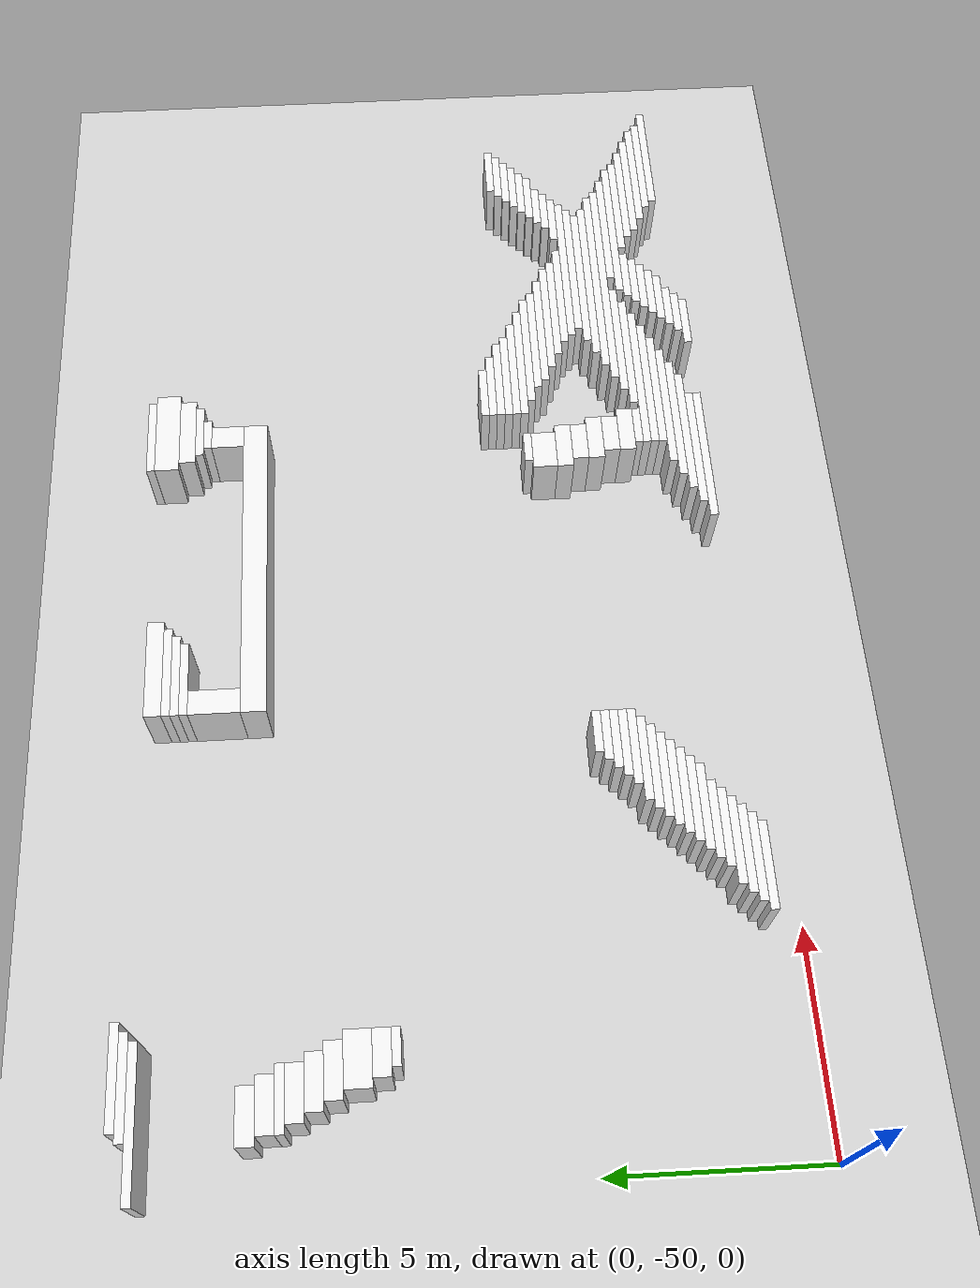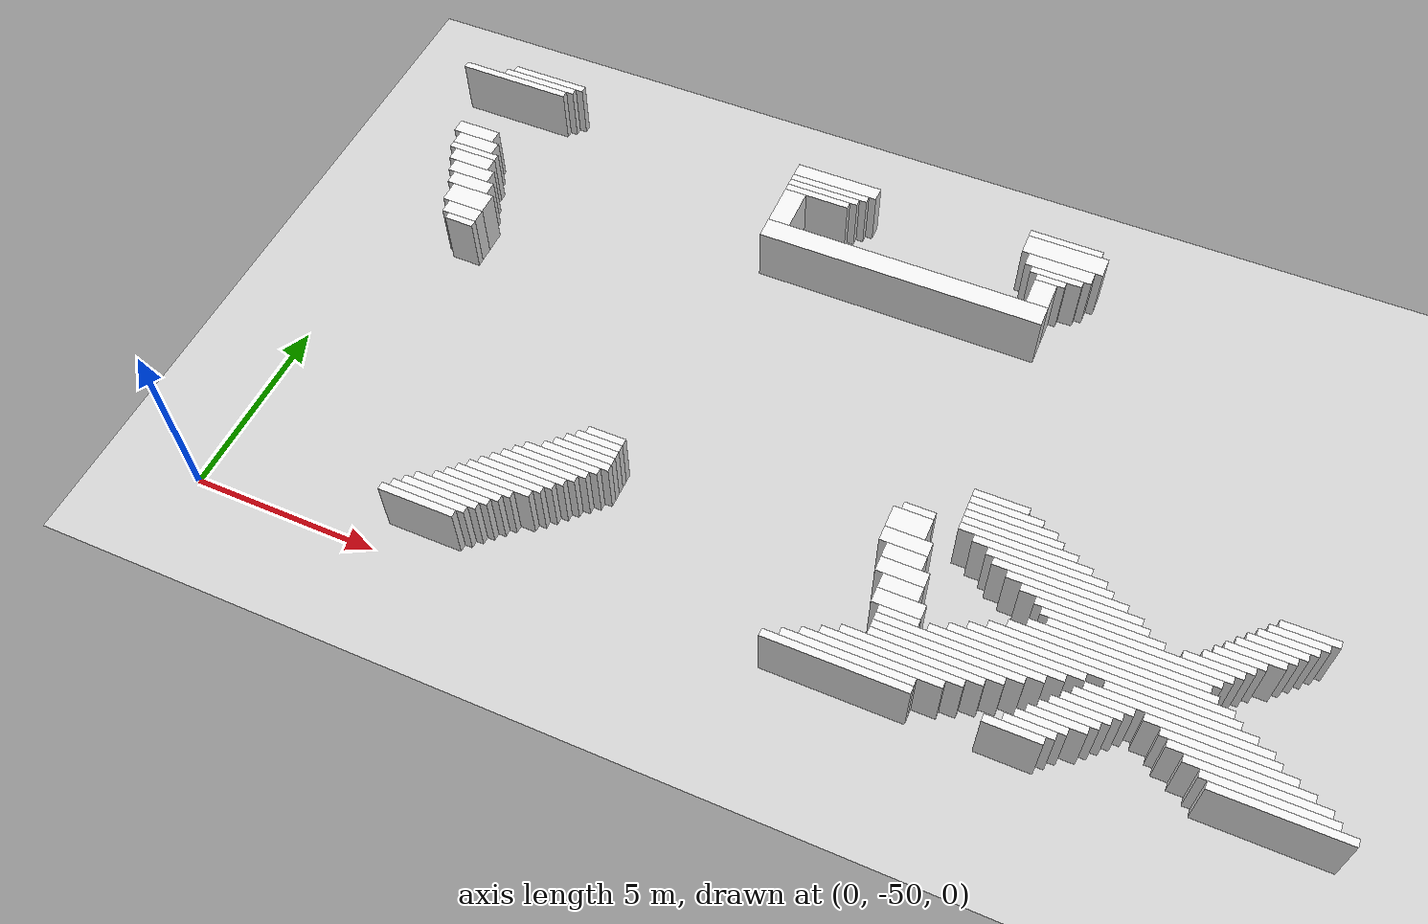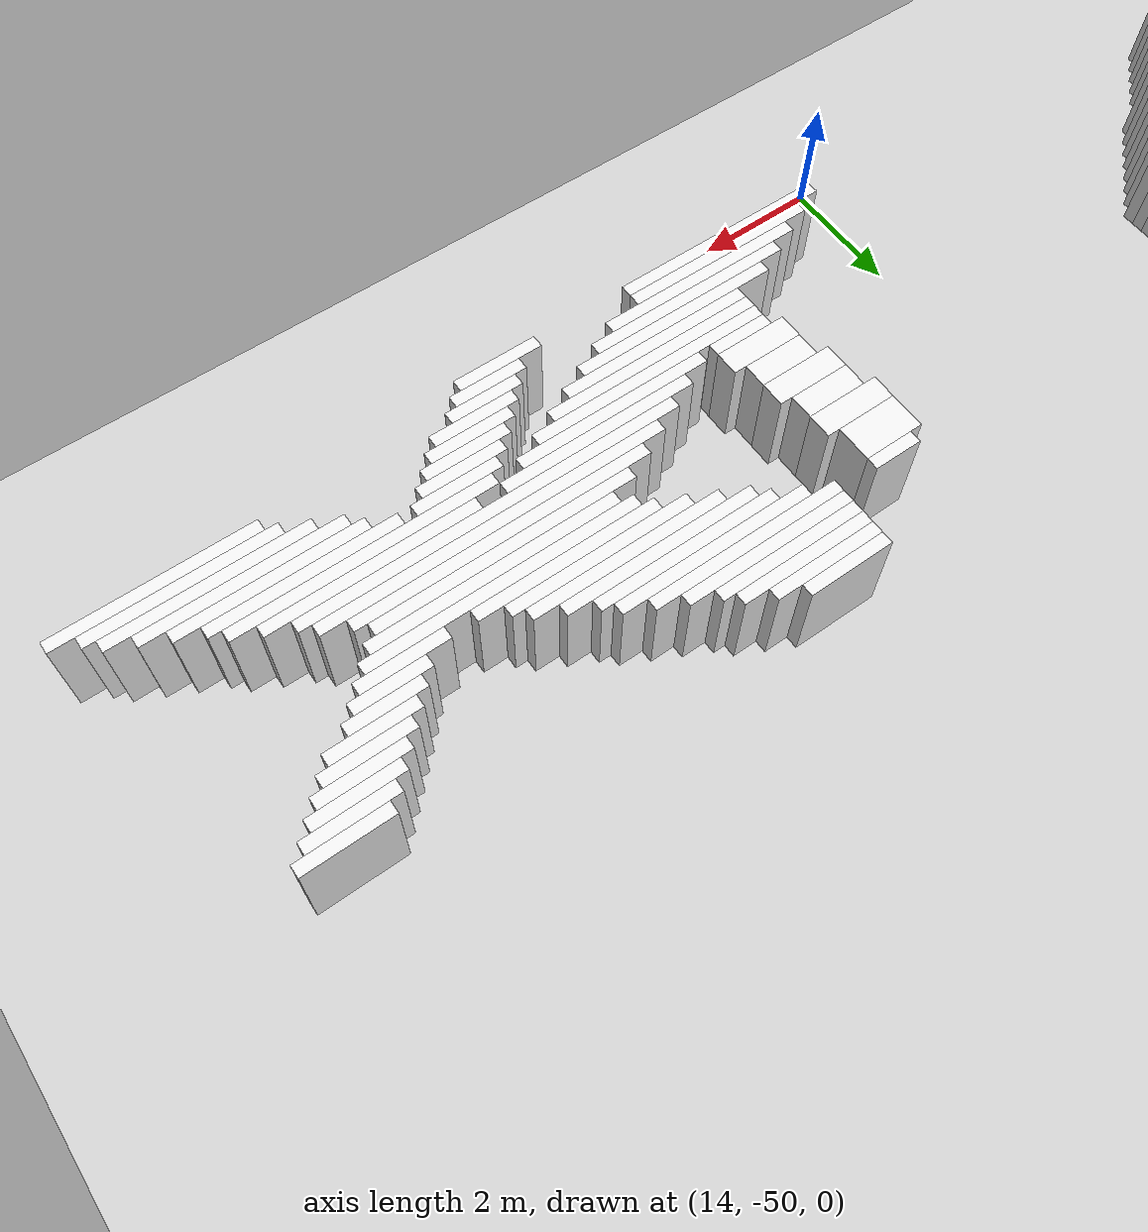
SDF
<sdf version="1.7">
 <world name="default">
  <model name="ground_plane">
   <static>1</static>
   <link name="link">
    <collision name="collision">
     <geometry><plane><normal>0 0 1</normal><size>120 120</size></plane></geometry>
    </collision>
    <visual name="visual">
     <geometry><plane><normal>0 0 1</normal><size>120 120</size></plane></geometry>
     <material>
      <script><uri>file://media/materials/scripts/gazebo.material</uri><name>Gazebo/Grey</name></script>
     </material>
    </visual>
   </link>
  </model>
  <model name="random_complex_03_model">
   <static>1</static>
   <link name="obs_2774">
    <pose>2.3000 -35.1000 0.8000 0 0 0</pose>
    <collision name="obs_2774_col"><geometry><box><size>2.2000 0.2000 1.6000</size></box></geometry></collision>
    <visual name="obs_2774_vis">
     <geometry><box><size>2.2000 0.2000 1.6000</size></box></geometry>
     <material>
      <script><uri>file://media/materials/scripts/gazebo.material</uri><name>Gazebo/White</name></script>
     </material>
    </visual>
   </link>
   <link name="obs_2783">
    <pose>2.1000 -35.3000 0.8000 0 0 0</pose>
    <collision name="obs_2783_col"><geometry><box><size>2.2000 0.2000 1.6000</size></box></geometry></collision>
    <visual name="obs_2783_vis">
     <geometry><box><size>2.2000 0.2000 1.6000</size></box></geometry>
     <material>
      <script><uri>file://media/materials/scripts/gazebo.material</uri><name>Gazebo/White</name></script>
     </material>
    </visual>
   </link>
   <link name="obs_2784">
    <pose>17.8000 -35.3000 0.8000 0 0 0</pose>
    <collision name="obs_2784_col"><geometry><box><size>2.0000 0.2000 1.6000</size></box></geometry></collision>
    <visual name="obs_2784_vis">
     <geometry><box><size>2.0000 0.2000 1.6000</size></box></geometry>
     <material>
      <script><uri>file://media/materials/scripts/gazebo.material</uri><name>Gazebo/White</name></script>
     </material>
    </visual>
   </link>
   <link name="obs_2790">
    <pose>1.4000 -35.5000 0.8000 0 0 0</pose>
    <collision name="obs_2790_col"><geometry><box><size>3.2000 0.2000 1.6000</size></box></geometry></collision>
    <visual name="obs_2790_vis">
     <geometry><box><size>3.2000 0.2000 1.6000</size></box></geometry>
     <material>
      <script><uri>file://media/materials/scripts/gazebo.material</uri><name>Gazebo/White</name></script>
     </material>
    </visual>
   </link>
   <link name="obs_2794">
    <pose>11.4000 -35.6000 0.8000 0 0 0</pose>
    <collision name="obs_2794_col"><geometry><box><size>2.4000 0.4000 1.6000</size></box></geometry></collision>
    <visual name="obs_2794_vis">
     <geometry><box><size>2.4000 0.4000 1.6000</size></box></geometry>
     <material>
      <script><uri>file://media/materials/scripts/gazebo.material</uri><name>Gazebo/White</name></script>
     </material>
    </visual>
   </link>
   <link name="obs_2802">
    <pose>17.9000 -35.7000 0.8000 0 0 0</pose>
    <collision name="obs_2802_col"><geometry><box><size>2.2000 0.6000 1.6000</size></box></geometry></collision>
    <visual name="obs_2802_vis">
     <geometry><box><size>2.2000 0.6000 1.6000</size></box></geometry>
     <material>
      <script><uri>file://media/materials/scripts/gazebo.material</uri><name>Gazebo/White</name></script>
     </material>
    </visual>
   </link>
   <link name="obs_2807">
    <pose>11.3000 -35.9000 0.8000 0 0 0</pose>
    <collision name="obs_2807_col"><geometry><box><size>2.2000 0.2000 1.6000</size></box></geometry></collision>
    <visual name="obs_2807_vis">
     <geometry><box><size>2.2000 0.2000 1.6000</size></box></geometry>
     <material>
      <script><uri>file://media/materials/scripts/gazebo.material</uri><name>Gazebo/White</name></script>
     </material>
    </visual>
   </link>
   <link name="obs_2815">
    <pose>11.2000 -36.1000 0.8000 0 0 0</pose>
    <collision name="obs_2815_col"><geometry><box><size>2.0000 0.2000 1.6000</size></box></geometry></collision>
    <visual name="obs_2815_vis">
     <geometry><box><size>2.0000 0.2000 1.6000</size></box></geometry>
     <material>
      <script><uri>file://media/materials/scripts/gazebo.material</uri><name>Gazebo/White</name></script>
     </material>
    </visual>
   </link>
   <link name="obs_2816">
    <pose>17.9000 -36.2000 0.8000 0 0 0</pose>
    <collision name="obs_2816_col"><geometry><box><size>1.8000 0.4000 1.6000</size></box></geometry></collision>
    <visual name="obs_2816_vis">
     <geometry><box><size>1.8000 0.4000 1.6000</size></box></geometry>
     <material>
      <script><uri>file://media/materials/scripts/gazebo.material</uri><name>Gazebo/White</name></script>
     </material>
    </visual>
   </link>
   <link name="obs_2823">
    <pose>11.1000 -36.3000 0.8000 0 0 0</pose>
    <collision name="obs_2823_col"><geometry><box><size>1.8000 0.2000 1.6000</size></box></geometry></collision>
    <visual name="obs_2823_vis">
     <geometry><box><size>1.8000 0.2000 1.6000</size></box></geometry>
     <material>
      <script><uri>file://media/materials/scripts/gazebo.material</uri><name>Gazebo/White</name></script>
     </material>
    </visual>
   </link>
   <link name="obs_2828">
    <pose>17.9000 -36.5000 0.8000 0 0 0</pose>
    <collision name="obs_2828_col"><geometry><box><size>1.4000 0.2000 1.6000</size></box></geometry></collision>
    <visual name="obs_2828_vis">
     <geometry><box><size>1.4000 0.2000 1.6000</size></box></geometry>
     <material>
      <script><uri>file://media/materials/scripts/gazebo.material</uri><name>Gazebo/White</name></script>
     </material>
    </visual>
   </link>
   <link name="obs_2835">
    <pose>17.8000 -36.7000 0.8000 0 0 0</pose>
    <collision name="obs_2835_col"><geometry><box><size>0.8000 0.2000 1.6000</size></box></geometry></collision>
    <visual name="obs_2835_vis">
     <geometry><box><size>0.8000 0.2000 1.6000</size></box></geometry>
     <material>
      <script><uri>file://media/materials/scripts/gazebo.material</uri><name>Gazebo/White</name></script>
     </material>
    </visual>
   </link>
   <link name="obs_2853">
    <pose>10.5000 -37.0000 0.8000 0 0 0</pose>
    <collision name="obs_2853_col"><geometry><box><size>0.6000 1.2000 1.6000</size></box></geometry></collision>
    <visual name="obs_2853_vis">
     <geometry><box><size>0.6000 1.2000 1.6000</size></box></geometry>
     <material>
      <script><uri>file://media/materials/scripts/gazebo.material</uri><name>Gazebo/White</name></script>
     </material>
    </visual>
   </link>
   <link name="obs_2854">
    <pose>17.7000 -37.2000 0.8000 0 0 0</pose>
    <collision name="obs_2854_col"><geometry><box><size>0.6000 0.8000 1.6000</size></box></geometry></collision>
    <visual name="obs_2854_vis">
     <geometry><box><size>0.6000 0.8000 1.6000</size></box></geometry>
     <material>
      <script><uri>file://media/materials/scripts/gazebo.material</uri><name>Gazebo/White</name></script>
     </material>
    </visual>
   </link>
   <link name="obs_2866">
    <pose>1.4000 -37.8000 0.8000 0 0 0</pose>
    <collision name="obs_2866_col"><geometry><box><size>1.2000 0.4000 1.6000</size></box></geometry></collision>
    <visual name="obs_2866_vis">
     <geometry><box><size>1.2000 0.4000 1.6000</size></box></geometry>
     <material>
      <script><uri>file://media/materials/scripts/gazebo.material</uri><name>Gazebo/White</name></script>
     </material>
    </visual>
   </link>
   <link name="obs_2870">
    <pose>14.1000 -37.9000 0.8000 0 0 0</pose>
    <collision name="obs_2870_col"><geometry><box><size>7.8000 0.6000 1.6000</size></box></geometry></collision>
    <visual name="obs_2870_vis">
     <geometry><box><size>7.8000 0.6000 1.6000</size></box></geometry>
     <material>
      <script><uri>file://media/materials/scripts/gazebo.material</uri><name>Gazebo/White</name></script>
     </material>
    </visual>
   </link>
   <link name="obs_2877">
    <pose>1.6000 -38.2000 0.8000 0 0 0</pose>
    <collision name="obs_2877_col"><geometry><box><size>1.2000 0.4000 1.6000</size></box></geometry></collision>
    <visual name="obs_2877_vis">
     <geometry><box><size>1.2000 0.4000 1.6000</size></box></geometry>
     <material>
      <script><uri>file://media/materials/scripts/gazebo.material</uri><name>Gazebo/White</name></script>
     </material>
    </visual>
   </link>
   <link name="obs_2887">
    <pose>1.7000 -38.5000 0.8000 0 0 0</pose>
    <collision name="obs_2887_col"><geometry><box><size>1.4000 0.2000 1.6000</size></box></geometry></collision>
    <visual name="obs_2887_vis">
     <geometry><box><size>1.4000 0.2000 1.6000</size></box></geometry>
     <material>
      <script><uri>file://media/materials/scripts/gazebo.material</uri><name>Gazebo/White</name></script>
     </material>
    </visual>
   </link>
   <link name="obs_2895">
    <pose>1.8000 -38.8000 0.8000 0 0 0</pose>
    <collision name="obs_2895_col"><geometry><box><size>1.2000 0.4000 1.6000</size></box></geometry></collision>
    <visual name="obs_2895_vis">
     <geometry><box><size>1.2000 0.4000 1.6000</size></box></geometry>
     <material>
      <script><uri>file://media/materials/scripts/gazebo.material</uri><name>Gazebo/White</name></script>
     </material>
    </visual>
   </link>
   <link name="obs_2904">
    <pose>2.0000 -39.2000 0.8000 0 0 0</pose>
    <collision name="obs_2904_col"><geometry><box><size>1.2000 0.4000 1.6000</size></box></geometry></collision>
    <visual name="obs_2904_vis">
     <geometry><box><size>1.2000 0.4000 1.6000</size></box></geometry>
     <material>
      <script><uri>file://media/materials/scripts/gazebo.material</uri><name>Gazebo/White</name></script>
     </material>
    </visual>
   </link>
   <link name="obs_2914">
    <pose>2.2000 -39.6000 0.8000 0 0 0</pose>
    <collision name="obs_2914_col"><geometry><box><size>1.2000 0.4000 1.6000</size></box></geometry></collision>
    <visual name="obs_2914_vis">
     <geometry><box><size>1.2000 0.4000 1.6000</size></box></geometry>
     <material>
      <script><uri>file://media/materials/scripts/gazebo.material</uri><name>Gazebo/White</name></script>
     </material>
    </visual>
   </link>
   <link name="obs_2931">
    <pose>2.4000 -40.1000 0.8000 0 0 0</pose>
    <collision name="obs_2931_col"><geometry><box><size>1.2000 0.6000 1.6000</size></box></geometry></collision>
    <visual name="obs_2931_vis">
     <geometry><box><size>1.2000 0.6000 1.6000</size></box></geometry>
     <material>
      <script><uri>file://media/materials/scripts/gazebo.material</uri><name>Gazebo/White</name></script>
     </material>
    </visual>
   </link>
   <link name="obs_2943">
    <pose>2.5000 -40.6000 0.8000 0 0 0</pose>
    <collision name="obs_2943_col"><geometry><box><size>1.0000 0.4000 1.6000</size></box></geometry></collision>
    <visual name="obs_2943_vis">
     <geometry><box><size>1.0000 0.4000 1.6000</size></box></geometry>
     <material>
      <script><uri>file://media/materials/scripts/gazebo.material</uri><name>Gazebo/White</name></script>
     </material>
    </visual>
   </link>
   <link name="obs_2953">
    <pose>2.6000 -40.9000 0.8000 0 0 0</pose>
    <collision name="obs_2953_col"><geometry><box><size>0.8000 0.2000 1.6000</size></box></geometry></collision>
    <visual name="obs_2953_vis">
     <geometry><box><size>0.8000 0.2000 1.6000</size></box></geometry>
     <material>
      <script><uri>file://media/materials/scripts/gazebo.material</uri><name>Gazebo/White</name></script>
     </material>
    </visual>
   </link>
   <link name="obs_3016">
    <pose>18.7000 -43.7000 0.8000 0 0 0</pose>
    <collision name="obs_3016_col"><geometry><box><size>1.4000 0.2000 1.6000</size></box></geometry></collision>
    <visual name="obs_3016_vis">
     <geometry><box><size>1.4000 0.2000 1.6000</size></box></geometry>
     <material>
      <script><uri>file://media/materials/scripts/gazebo.material</uri><name>Gazebo/White</name></script>
     </material>
    </visual>
   </link>
   <link name="obs_3021">
    <pose>18.9000 -43.9000 0.8000 0 0 0</pose>
    <collision name="obs_3021_col"><geometry><box><size>1.8000 0.2000 1.6000</size></box></geometry></collision>
    <visual name="obs_3021_vis">
     <geometry><box><size>1.8000 0.2000 1.6000</size></box></geometry>
     <material>
      <script><uri>file://media/materials/scripts/gazebo.material</uri><name>Gazebo/White</name></script>
     </material>
    </visual>
   </link>
   <link name="obs_3025">
    <pose>19.1000 -44.1000 0.8000 0 0 0</pose>
    <collision name="obs_3025_col"><geometry><box><size>2.2000 0.2000 1.6000</size></box></geometry></collision>
    <visual name="obs_3025_vis">
     <geometry><box><size>2.2000 0.2000 1.6000</size></box></geometry>
     <material>
      <script><uri>file://media/materials/scripts/gazebo.material</uri><name>Gazebo/White</name></script>
     </material>
    </visual>
   </link>
   <link name="obs_3031">
    <pose>19.2000 -44.3000 0.8000 0 0 0</pose>
    <collision name="obs_3031_col"><geometry><box><size>2.4000 0.2000 1.6000</size></box></geometry></collision>
    <visual name="obs_3031_vis">
     <geometry><box><size>2.4000 0.2000 1.6000</size></box></geometry>
     <material>
      <script><uri>file://media/materials/scripts/gazebo.material</uri><name>Gazebo/White</name></script>
     </material>
    </visual>
   </link>
   <link name="obs_3032">
    <pose>26.1000 -44.3000 0.8000 0 0 0</pose>
    <collision name="obs_3032_col"><geometry><box><size>1.4000 0.2000 1.6000</size></box></geometry></collision>
    <visual name="obs_3032_vis">
     <geometry><box><size>1.4000 0.2000 1.6000</size></box></geometry>
     <material>
      <script><uri>file://media/materials/scripts/gazebo.material</uri><name>Gazebo/White</name></script>
     </material>
    </visual>
   </link>
   <link name="obs_3037">
    <pose>19.4000 -44.5000 0.8000 0 0 0</pose>
    <collision name="obs_3037_col"><geometry><box><size>2.8000 0.2000 1.6000</size></box></geometry></collision>
    <visual name="obs_3037_vis">
     <geometry><box><size>2.8000 0.2000 1.6000</size></box></geometry>
     <material>
      <script><uri>file://media/materials/scripts/gazebo.material</uri><name>Gazebo/White</name></script>
     </material>
    </visual>
   </link>
   <link name="obs_3038">
    <pose>25.9000 -44.5000 0.8000 0 0 0</pose>
    <collision name="obs_3038_col"><geometry><box><size>1.4000 0.2000 1.6000</size></box></geometry></collision>
    <visual name="obs_3038_vis">
     <geometry><box><size>1.4000 0.2000 1.6000</size></box></geometry>
     <material>
      <script><uri>file://media/materials/scripts/gazebo.material</uri><name>Gazebo/White</name></script>
     </material>
    </visual>
   </link>
   <link name="obs_3042">
    <pose>17.0000 -44.7000 0.8000 0 0 0</pose>
    <collision name="obs_3042_col"><geometry><box><size>0.8000 0.2000 1.6000</size></box></geometry></collision>
    <visual name="obs_3042_vis">
     <geometry><box><size>0.8000 0.2000 1.6000</size></box></geometry>
     <material>
      <script><uri>file://media/materials/scripts/gazebo.material</uri><name>Gazebo/White</name></script>
     </material>
    </visual>
   </link>
   <link name="obs_3043">
    <pose>19.6000 -44.7000 0.8000 0 0 0</pose>
    <collision name="obs_3043_col"><geometry><box><size>3.2000 0.2000 1.6000</size></box></geometry></collision>
    <visual name="obs_3043_vis">
     <geometry><box><size>3.2000 0.2000 1.6000</size></box></geometry>
     <material>
      <script><uri>file://media/materials/scripts/gazebo.material</uri><name>Gazebo/White</name></script>
     </material>
    </visual>
   </link>
   <link name="obs_3044">
    <pose>25.7000 -44.7000 0.8000 0 0 0</pose>
    <collision name="obs_3044_col"><geometry><box><size>1.4000 0.2000 1.6000</size></box></geometry></collision>
    <visual name="obs_3044_vis">
     <geometry><box><size>1.4000 0.2000 1.6000</size></box></geometry>
     <material>
      <script><uri>file://media/materials/scripts/gazebo.material</uri><name>Gazebo/White</name></script>
     </material>
    </visual>
   </link>
   <link name="obs_3048">
    <pose>20.0000 -44.9000 0.8000 0 0 0</pose>
    <collision name="obs_3048_col"><geometry><box><size>3.2000 0.2000 1.6000</size></box></geometry></collision>
    <visual name="obs_3048_vis">
     <geometry><box><size>3.2000 0.2000 1.6000</size></box></geometry>
     <material>
      <script><uri>file://media/materials/scripts/gazebo.material</uri><name>Gazebo/White</name></script>
     </material>
    </visual>
   </link>
   <link name="obs_3049">
    <pose>25.5000 -44.9000 0.8000 0 0 0</pose>
    <collision name="obs_3049_col"><geometry><box><size>1.4000 0.2000 1.6000</size></box></geometry></collision>
    <visual name="obs_3049_vis">
     <geometry><box><size>1.4000 0.2000 1.6000</size></box></geometry>
     <material>
      <script><uri>file://media/materials/scripts/gazebo.material</uri><name>Gazebo/White</name></script>
     </material>
    </visual>
   </link>
   <link name="obs_3052">
    <pose>20.3000 -45.1000 0.8000 0 0 0</pose>
    <collision name="obs_3052_col"><geometry><box><size>3.0000 0.2000 1.6000</size></box></geometry></collision>
    <visual name="obs_3052_vis">
     <geometry><box><size>3.0000 0.2000 1.6000</size></box></geometry>
     <material>
      <script><uri>file://media/materials/scripts/gazebo.material</uri><name>Gazebo/White</name></script>
     </material>
    </visual>
   </link>
   <link name="obs_3053">
    <pose>25.3000 -45.1000 0.8000 0 0 0</pose>
    <collision name="obs_3053_col"><geometry><box><size>1.4000 0.2000 1.6000</size></box></geometry></collision>
    <visual name="obs_3053_vis">
     <geometry><box><size>1.4000 0.2000 1.6000</size></box></geometry>
     <material>
      <script><uri>file://media/materials/scripts/gazebo.material</uri><name>Gazebo/White</name></script>
     </material>
    </visual>
   </link>
   <link name="obs_3055">
    <pose>16.9000 -45.1000 0.8000 0 0 0</pose>
    <collision name="obs_3055_col"><geometry><box><size>1.0000 0.6000 1.6000</size></box></geometry></collision>
    <visual name="obs_3055_vis">
     <geometry><box><size>1.0000 0.6000 1.6000</size></box></geometry>
     <material>
      <script><uri>file://media/materials/scripts/gazebo.material</uri><name>Gazebo/White</name></script>
     </material>
    </visual>
   </link>
   <link name="obs_3058">
    <pose>20.6000 -45.3000 0.8000 0 0 0</pose>
    <collision name="obs_3058_col"><geometry><box><size>3.2000 0.2000 1.6000</size></box></geometry></collision>
    <visual name="obs_3058_vis">
     <geometry><box><size>3.2000 0.2000 1.6000</size></box></geometry>
     <material>
      <script><uri>file://media/materials/scripts/gazebo.material</uri><name>Gazebo/White</name></script>
     </material>
    </visual>
   </link>
   <link name="obs_3059">
    <pose>25.1000 -45.3000 0.8000 0 0 0</pose>
    <collision name="obs_3059_col"><geometry><box><size>1.4000 0.2000 1.6000</size></box></geometry></collision>
    <visual name="obs_3059_vis">
     <geometry><box><size>1.4000 0.2000 1.6000</size></box></geometry>
     <material>
      <script><uri>file://media/materials/scripts/gazebo.material</uri><name>Gazebo/White</name></script>
     </material>
    </visual>
   </link>
   <link name="obs_3063">
    <pose>21.0000 -45.5000 0.8000 0 0 0</pose>
    <collision name="obs_3063_col"><geometry><box><size>3.2000 0.2000 1.6000</size></box></geometry></collision>
    <visual name="obs_3063_vis">
     <geometry><box><size>3.2000 0.2000 1.6000</size></box></geometry>
     <material>
      <script><uri>file://media/materials/scripts/gazebo.material</uri><name>Gazebo/White</name></script>
     </material>
    </visual>
   </link>
   <link name="obs_3064">
    <pose>24.8000 -45.5000 0.8000 0 0 0</pose>
    <collision name="obs_3064_col"><geometry><box><size>1.2000 0.2000 1.6000</size></box></geometry></collision>
    <visual name="obs_3064_vis">
     <geometry><box><size>1.2000 0.2000 1.6000</size></box></geometry>
     <material>
      <script><uri>file://media/materials/scripts/gazebo.material</uri><name>Gazebo/White</name></script>
     </material>
    </visual>
   </link>
   <link name="obs_3066">
    <pose>17.0000 -45.6000 0.8000 0 0 0</pose>
    <collision name="obs_3066_col"><geometry><box><size>1.2000 0.4000 1.6000</size></box></geometry></collision>
    <visual name="obs_3066_vis">
     <geometry><box><size>1.2000 0.4000 1.6000</size></box></geometry>
     <material>
      <script><uri>file://media/materials/scripts/gazebo.material</uri><name>Gazebo/White</name></script>
     </material>
    </visual>
   </link>
   <link name="obs_3070">
    <pose>9.3000 -45.7000 0.8000 0 0 0</pose>
    <collision name="obs_3070_col"><geometry><box><size>1.0000 0.2000 1.6000</size></box></geometry></collision>
    <visual name="obs_3070_vis">
     <geometry><box><size>1.0000 0.2000 1.6000</size></box></geometry>
     <material>
      <script><uri>file://media/materials/scripts/gazebo.material</uri><name>Gazebo/White</name></script>
     </material>
    </visual>
   </link>
   <link name="obs_3071">
    <pose>21.3000 -45.7000 0.8000 0 0 0</pose>
    <collision name="obs_3071_col"><geometry><box><size>3.0000 0.2000 1.6000</size></box></geometry></collision>
    <visual name="obs_3071_vis">
     <geometry><box><size>3.0000 0.2000 1.6000</size></box></geometry>
     <material>
      <script><uri>file://media/materials/scripts/gazebo.material</uri><name>Gazebo/White</name></script>
     </material>
    </visual>
   </link>
   <link name="obs_3072">
    <pose>24.6000 -45.7000 0.8000 0 0 0</pose>
    <collision name="obs_3072_col"><geometry><box><size>1.2000 0.2000 1.6000</size></box></geometry></collision>
    <visual name="obs_3072_vis">
     <geometry><box><size>1.2000 0.2000 1.6000</size></box></geometry>
     <material>
      <script><uri>file://media/materials/scripts/gazebo.material</uri><name>Gazebo/White</name></script>
     </material>
    </visual>
   </link>
   <link name="obs_3076">
    <pose>9.2000 -45.9000 0.8000 0 0 0</pose>
    <collision name="obs_3076_col"><geometry><box><size>1.2000 0.2000 1.6000</size></box></geometry></collision>
    <visual name="obs_3076_vis">
     <geometry><box><size>1.2000 0.2000 1.6000</size></box></geometry>
     <material>
      <script><uri>file://media/materials/scripts/gazebo.material</uri><name>Gazebo/White</name></script>
     </material>
    </visual>
   </link>
   <link name="obs_3077">
    <pose>21.7000 -45.9000 0.8000 0 0 0</pose>
    <collision name="obs_3077_col"><geometry><box><size>3.0000 0.2000 1.6000</size></box></geometry></collision>
    <visual name="obs_3077_vis">
     <geometry><box><size>3.0000 0.2000 1.6000</size></box></geometry>
     <material>
      <script><uri>file://media/materials/scripts/gazebo.material</uri><name>Gazebo/White</name></script>
     </material>
    </visual>
   </link>
   <link name="obs_3078">
    <pose>24.3000 -45.9000 0.8000 0 0 0</pose>
    <collision name="obs_3078_col"><geometry><box><size>1.4000 0.2000 1.6000</size></box></geometry></collision>
    <visual name="obs_3078_vis">
     <geometry><box><size>1.4000 0.2000 1.6000</size></box></geometry>
     <material>
      <script><uri>file://media/materials/scripts/gazebo.material</uri><name>Gazebo/White</name></script>
     </material>
    </visual>
   </link>
   <link name="obs_3082">
    <pose>17.1000 -46.0000 0.8000 0 0 0</pose>
    <collision name="obs_3082_col"><geometry><box><size>1.0000 0.4000 1.6000</size></box></geometry></collision>
    <visual name="obs_3082_vis">
     <geometry><box><size>1.0000 0.4000 1.6000</size></box></geometry>
     <material>
      <script><uri>file://media/materials/scripts/gazebo.material</uri><name>Gazebo/White</name></script>
     </material>
    </visual>
   </link>
   <link name="obs_3084">
    <pose>9.1000 -46.1000 0.8000 0 0 0</pose>
    <collision name="obs_3084_col"><geometry><box><size>1.4000 0.2000 1.6000</size></box></geometry></collision>
    <visual name="obs_3084_vis">
     <geometry><box><size>1.4000 0.2000 1.6000</size></box></geometry>
     <material>
      <script><uri>file://media/materials/scripts/gazebo.material</uri><name>Gazebo/White</name></script>
     </material>
    </visual>
   </link>
   <link name="obs_3085">
    <pose>22.6000 -46.1000 0.8000 0 0 0</pose>
    <collision name="obs_3085_col"><geometry><box><size>4.4000 0.2000 1.6000</size></box></geometry></collision>
    <visual name="obs_3085_vis">
     <geometry><box><size>4.4000 0.2000 1.6000</size></box></geometry>
     <material>
      <script><uri>file://media/materials/scripts/gazebo.material</uri><name>Gazebo/White</name></script>
     </material>
    </visual>
   </link>
   <link name="obs_3090">
    <pose>9.0000 -46.3000 0.8000 0 0 0</pose>
    <collision name="obs_3090_col"><geometry><box><size>1.6000 0.2000 1.6000</size></box></geometry></collision>
    <visual name="obs_3090_vis">
     <geometry><box><size>1.6000 0.2000 1.6000</size></box></geometry>
     <material>
      <script><uri>file://media/materials/scripts/gazebo.material</uri><name>Gazebo/White</name></script>
     </material>
    </visual>
   </link>
   <link name="obs_3091">
    <pose>22.6000 -46.3000 0.8000 0 0 0</pose>
    <collision name="obs_3091_col"><geometry><box><size>4.0000 0.2000 1.6000</size></box></geometry></collision>
    <visual name="obs_3091_vis">
     <geometry><box><size>4.0000 0.2000 1.6000</size></box></geometry>
     <material>
      <script><uri>file://media/materials/scripts/gazebo.material</uri><name>Gazebo/White</name></script>
     </material>
    </visual>
   </link>
   <link name="obs_3093">
    <pose>17.2000 -46.4000 0.8000 0 0 0</pose>
    <collision name="obs_3093_col"><geometry><box><size>1.2000 0.4000 1.6000</size></box></geometry></collision>
    <visual name="obs_3093_vis">
     <geometry><box><size>1.2000 0.4000 1.6000</size></box></geometry>
     <material>
      <script><uri>file://media/materials/scripts/gazebo.material</uri><name>Gazebo/White</name></script>
     </material>
    </visual>
   </link>
   <link name="obs_3097">
    <pose>8.9000 -46.5000 0.8000 0 0 0</pose>
    <collision name="obs_3097_col"><geometry><box><size>1.8000 0.2000 1.6000</size></box></geometry></collision>
    <visual name="obs_3097_vis">
     <geometry><box><size>1.8000 0.2000 1.6000</size></box></geometry>
     <material>
      <script><uri>file://media/materials/scripts/gazebo.material</uri><name>Gazebo/White</name></script>
     </material>
    </visual>
   </link>
   <link name="obs_3098">
    <pose>22.3000 -46.5000 0.8000 0 0 0</pose>
    <collision name="obs_3098_col"><geometry><box><size>4.2000 0.2000 1.6000</size></box></geometry></collision>
    <visual name="obs_3098_vis">
     <geometry><box><size>4.2000 0.2000 1.6000</size></box></geometry>
     <material>
      <script><uri>file://media/materials/scripts/gazebo.material</uri><name>Gazebo/White</name></script>
     </material>
    </visual>
   </link>
   <link name="obs_3103">
    <pose>8.6000 -46.7000 0.8000 0 0 0</pose>
    <collision name="obs_3103_col"><geometry><box><size>2.0000 0.2000 1.6000</size></box></geometry></collision>
    <visual name="obs_3103_vis">
     <geometry><box><size>2.0000 0.2000 1.6000</size></box></geometry>
     <material>
      <script><uri>file://media/materials/scripts/gazebo.material</uri><name>Gazebo/White</name></script>
     </material>
    </visual>
   </link>
   <link name="obs_3104">
    <pose>22.2000 -46.7000 0.8000 0 0 0</pose>
    <collision name="obs_3104_col"><geometry><box><size>4.8000 0.2000 1.6000</size></box></geometry></collision>
    <visual name="obs_3104_vis">
     <geometry><box><size>4.8000 0.2000 1.6000</size></box></geometry>
     <material>
      <script><uri>file://media/materials/scripts/gazebo.material</uri><name>Gazebo/White</name></script>
     </material>
    </visual>
   </link>
   <link name="obs_3107">
    <pose>17.3000 -46.8000 0.8000 0 0 0</pose>
    <collision name="obs_3107_col"><geometry><box><size>1.0000 0.4000 1.6000</size></box></geometry></collision>
    <visual name="obs_3107_vis">
     <geometry><box><size>1.0000 0.4000 1.6000</size></box></geometry>
     <material>
      <script><uri>file://media/materials/scripts/gazebo.material</uri><name>Gazebo/White</name></script>
     </material>
    </visual>
   </link>
   <link name="obs_3111">
    <pose>8.4000 -46.9000 0.8000 0 0 0</pose>
    <collision name="obs_3111_col"><geometry><box><size>2.0000 0.2000 1.6000</size></box></geometry></collision>
    <visual name="obs_3111_vis">
     <geometry><box><size>2.0000 0.2000 1.6000</size></box></geometry>
     <material>
      <script><uri>file://media/materials/scripts/gazebo.material</uri><name>Gazebo/White</name></script>
     </material>
    </visual>
   </link>
   <link name="obs_3112">
    <pose>22.2000 -46.9000 0.8000 0 0 0</pose>
    <collision name="obs_3112_col"><geometry><box><size>5.6000 0.2000 1.6000</size></box></geometry></collision>
    <visual name="obs_3112_vis">
     <geometry><box><size>5.6000 0.2000 1.6000</size></box></geometry>
     <material>
      <script><uri>file://media/materials/scripts/gazebo.material</uri><name>Gazebo/White</name></script>
     </material>
    </visual>
   </link>
   <link name="obs_3118">
    <pose>8.2000 -47.1000 0.8000 0 0 0</pose>
    <collision name="obs_3118_col"><geometry><box><size>2.0000 0.2000 1.6000</size></box></geometry></collision>
    <visual name="obs_3118_vis">
     <geometry><box><size>2.0000 0.2000 1.6000</size></box></geometry>
     <material>
      <script><uri>file://media/materials/scripts/gazebo.material</uri><name>Gazebo/White</name></script>
     </material>
    </visual>
   </link>
   <link name="obs_3119">
    <pose>22.1000 -47.1000 0.8000 0 0 0</pose>
    <collision name="obs_3119_col"><geometry><box><size>6.2000 0.2000 1.6000</size></box></geometry></collision>
    <visual name="obs_3119_vis">
     <geometry><box><size>6.2000 0.2000 1.6000</size></box></geometry>
     <material>
      <script><uri>file://media/materials/scripts/gazebo.material</uri><name>Gazebo/White</name></script>
     </material>
    </visual>
   </link>
   <link name="obs_3122">
    <pose>17.4000 -47.2000 0.8000 0 0 0</pose>
    <collision name="obs_3122_col"><geometry><box><size>1.2000 0.4000 1.6000</size></box></geometry></collision>
    <visual name="obs_3122_vis">
     <geometry><box><size>1.2000 0.4000 1.6000</size></box></geometry>
     <material>
      <script><uri>file://media/materials/scripts/gazebo.material</uri><name>Gazebo/White</name></script>
     </material>
    </visual>
   </link>
   <link name="obs_3126">
    <pose>8.0000 -47.3000 0.8000 0 0 0</pose>
    <collision name="obs_3126_col"><geometry><box><size>2.0000 0.2000 1.6000</size></box></geometry></collision>
    <visual name="obs_3126_vis">
     <geometry><box><size>2.0000 0.2000 1.6000</size></box></geometry>
     <material>
      <script><uri>file://media/materials/scripts/gazebo.material</uri><name>Gazebo/White</name></script>
     </material>
    </visual>
   </link>
   <link name="obs_3127">
    <pose>20.2000 -47.3000 0.8000 0 0 0</pose>
    <collision name="obs_3127_col"><geometry><box><size>3.2000 0.2000 1.6000</size></box></geometry></collision>
    <visual name="obs_3127_vis">
     <geometry><box><size>3.2000 0.2000 1.6000</size></box></geometry>
     <material>
      <script><uri>file://media/materials/scripts/gazebo.material</uri><name>Gazebo/White</name></script>
     </material>
    </visual>
   </link>
   <link name="obs_3128">
    <pose>23.9000 -47.3000 0.8000 0 0 0</pose>
    <collision name="obs_3128_col"><geometry><box><size>3.4000 0.2000 1.6000</size></box></geometry></collision>
    <visual name="obs_3128_vis">
     <geometry><box><size>3.4000 0.2000 1.6000</size></box></geometry>
     <material>
      <script><uri>file://media/materials/scripts/gazebo.material</uri><name>Gazebo/White</name></script>
     </material>
    </visual>
   </link>
   <link name="obs_3133">
    <pose>7.8000 -47.5000 0.8000 0 0 0</pose>
    <collision name="obs_3133_col"><geometry><box><size>2.0000 0.2000 1.6000</size></box></geometry></collision>
    <visual name="obs_3133_vis">
     <geometry><box><size>2.0000 0.2000 1.6000</size></box></geometry>
     <material>
      <script><uri>file://media/materials/scripts/gazebo.material</uri><name>Gazebo/White</name></script>
     </material>
    </visual>
   </link>
   <link name="obs_3134">
    <pose>17.5000 -47.5000 0.8000 0 0 0</pose>
    <collision name="obs_3134_col"><geometry><box><size>1.0000 0.2000 1.6000</size></box></geometry></collision>
    <visual name="obs_3134_vis">
     <geometry><box><size>1.0000 0.2000 1.6000</size></box></geometry>
     <material>
      <script><uri>file://media/materials/scripts/gazebo.material</uri><name>Gazebo/White</name></script>
     </material>
    </visual>
   </link>
   <link name="obs_3135">
    <pose>19.8000 -47.5000 0.8000 0 0 0</pose>
    <collision name="obs_3135_col"><geometry><box><size>3.2000 0.2000 1.6000</size></box></geometry></collision>
    <visual name="obs_3135_vis">
     <geometry><box><size>3.2000 0.2000 1.6000</size></box></geometry>
     <material>
      <script><uri>file://media/materials/scripts/gazebo.material</uri><name>Gazebo/White</name></script>
     </material>
    </visual>
   </link>
   <link name="obs_3136">
    <pose>23.9000 -47.5000 0.8000 0 0 0</pose>
    <collision name="obs_3136_col"><geometry><box><size>4.2000 0.2000 1.6000</size></box></geometry></collision>
    <visual name="obs_3136_vis">
     <geometry><box><size>4.2000 0.2000 1.6000</size></box></geometry>
     <material>
      <script><uri>file://media/materials/scripts/gazebo.material</uri><name>Gazebo/White</name></script>
     </material>
    </visual>
   </link>
   <link name="obs_3140">
    <pose>7.6000 -47.7000 0.8000 0 0 0</pose>
    <collision name="obs_3140_col"><geometry><box><size>2.0000 0.2000 1.6000</size></box></geometry></collision>
    <visual name="obs_3140_vis">
     <geometry><box><size>2.0000 0.2000 1.6000</size></box></geometry>
     <material>
      <script><uri>file://media/materials/scripts/gazebo.material</uri><name>Gazebo/White</name></script>
     </material>
    </visual>
   </link>
   <link name="obs_3141">
    <pose>19.0000 -47.7000 0.8000 0 0 0</pose>
    <collision name="obs_3141_col"><geometry><box><size>4.0000 0.2000 1.6000</size></box></geometry></collision>
    <visual name="obs_3141_vis">
     <geometry><box><size>4.0000 0.2000 1.6000</size></box></geometry>
     <material>
      <script><uri>file://media/materials/scripts/gazebo.material</uri><name>Gazebo/White</name></script>
     </material>
    </visual>
   </link>
   <link name="obs_3142">
    <pose>22.3000 -47.7000 0.8000 0 0 0</pose>
    <collision name="obs_3142_col"><geometry><box><size>1.4000 0.2000 1.6000</size></box></geometry></collision>
    <visual name="obs_3142_vis">
     <geometry><box><size>1.4000 0.2000 1.6000</size></box></geometry>
     <material>
      <script><uri>file://media/materials/scripts/gazebo.material</uri><name>Gazebo/White</name></script>
     </material>
    </visual>
   </link>
   <link name="obs_3143">
    <pose>24.7000 -47.7000 0.8000 0 0 0</pose>
    <collision name="obs_3143_col"><geometry><box><size>3.0000 0.2000 1.6000</size></box></geometry></collision>
    <visual name="obs_3143_vis">
     <geometry><box><size>3.0000 0.2000 1.6000</size></box></geometry>
     <material>
      <script><uri>file://media/materials/scripts/gazebo.material</uri><name>Gazebo/White</name></script>
     </material>
    </visual>
   </link>
   <link name="obs_3146">
    <pose>7.4000 -47.9000 0.8000 0 0 0</pose>
    <collision name="obs_3146_col"><geometry><box><size>2.0000 0.2000 1.6000</size></box></geometry></collision>
    <visual name="obs_3146_vis">
     <geometry><box><size>2.0000 0.2000 1.6000</size></box></geometry>
     <material>
      <script><uri>file://media/materials/scripts/gazebo.material</uri><name>Gazebo/White</name></script>
     </material>
    </visual>
   </link>
   <link name="obs_3147">
    <pose>18.8000 -47.9000 0.8000 0 0 0</pose>
    <collision name="obs_3147_col"><geometry><box><size>3.6000 0.2000 1.6000</size></box></geometry></collision>
    <visual name="obs_3147_vis">
     <geometry><box><size>3.6000 0.2000 1.6000</size></box></geometry>
     <material>
      <script><uri>file://media/materials/scripts/gazebo.material</uri><name>Gazebo/White</name></script>
     </material>
    </visual>
   </link>
   <link name="obs_3148">
    <pose>22.1000 -47.9000 0.8000 0 0 0</pose>
    <collision name="obs_3148_col"><geometry><box><size>1.4000 0.2000 1.6000</size></box></geometry></collision>
    <visual name="obs_3148_vis">
     <geometry><box><size>1.4000 0.2000 1.6000</size></box></geometry>
     <material>
      <script><uri>file://media/materials/scripts/gazebo.material</uri><name>Gazebo/White</name></script>
     </material>
    </visual>
   </link>
   <link name="obs_3149">
    <pose>25.1000 -47.9000 0.8000 0 0 0</pose>
    <collision name="obs_3149_col"><geometry><box><size>3.0000 0.2000 1.6000</size></box></geometry></collision>
    <visual name="obs_3149_vis">
     <geometry><box><size>3.0000 0.2000 1.6000</size></box></geometry>
     <material>
      <script><uri>file://media/materials/scripts/gazebo.material</uri><name>Gazebo/White</name></script>
     </material>
    </visual>
   </link>
   <link name="obs_3153">
    <pose>7.1000 -48.1000 0.8000 0 0 0</pose>
    <collision name="obs_3153_col"><geometry><box><size>1.8000 0.2000 1.6000</size></box></geometry></collision>
    <visual name="obs_3153_vis">
     <geometry><box><size>1.8000 0.2000 1.6000</size></box></geometry>
     <material>
      <script><uri>file://media/materials/scripts/gazebo.material</uri><name>Gazebo/White</name></script>
     </material>
    </visual>
   </link>
   <link name="obs_3154">
    <pose>18.6000 -48.1000 0.8000 0 0 0</pose>
    <collision name="obs_3154_col"><geometry><box><size>3.2000 0.2000 1.6000</size></box></geometry></collision>
    <visual name="obs_3154_vis">
     <geometry><box><size>3.2000 0.2000 1.6000</size></box></geometry>
     <material>
      <script><uri>file://media/materials/scripts/gazebo.material</uri><name>Gazebo/White</name></script>
     </material>
    </visual>
   </link>
   <link name="obs_3155">
    <pose>21.9000 -48.1000 0.8000 0 0 0</pose>
    <collision name="obs_3155_col"><geometry><box><size>1.4000 0.2000 1.6000</size></box></geometry></collision>
    <visual name="obs_3155_vis">
     <geometry><box><size>1.4000 0.2000 1.6000</size></box></geometry>
     <material>
      <script><uri>file://media/materials/scripts/gazebo.material</uri><name>Gazebo/White</name></script>
     </material>
    </visual>
   </link>
   <link name="obs_3156">
    <pose>25.4000 -48.1000 0.8000 0 0 0</pose>
    <collision name="obs_3156_col"><geometry><box><size>3.2000 0.2000 1.6000</size></box></geometry></collision>
    <visual name="obs_3156_vis">
     <geometry><box><size>3.2000 0.2000 1.6000</size></box></geometry>
     <material>
      <script><uri>file://media/materials/scripts/gazebo.material</uri><name>Gazebo/White</name></script>
     </material>
    </visual>
   </link>
   <link name="obs_3160">
    <pose>6.9000 -48.3000 0.8000 0 0 0</pose>
    <collision name="obs_3160_col"><geometry><box><size>1.8000 0.2000 1.6000</size></box></geometry></collision>
    <visual name="obs_3160_vis">
     <geometry><box><size>1.8000 0.2000 1.6000</size></box></geometry>
     <material>
      <script><uri>file://media/materials/scripts/gazebo.material</uri><name>Gazebo/White</name></script>
     </material>
    </visual>
   </link>
   <link name="obs_3161">
    <pose>18.1000 -48.3000 0.8000 0 0 0</pose>
    <collision name="obs_3161_col"><geometry><box><size>3.4000 0.2000 1.6000</size></box></geometry></collision>
    <visual name="obs_3161_vis">
     <geometry><box><size>3.4000 0.2000 1.6000</size></box></geometry>
     <material>
      <script><uri>file://media/materials/scripts/gazebo.material</uri><name>Gazebo/White</name></script>
     </material>
    </visual>
   </link>
   <link name="obs_3162">
    <pose>21.7000 -48.3000 0.8000 0 0 0</pose>
    <collision name="obs_3162_col"><geometry><box><size>1.4000 0.2000 1.6000</size></box></geometry></collision>
    <visual name="obs_3162_vis">
     <geometry><box><size>1.4000 0.2000 1.6000</size></box></geometry>
     <material>
      <script><uri>file://media/materials/scripts/gazebo.material</uri><name>Gazebo/White</name></script>
     </material>
    </visual>
   </link>
   <link name="obs_3163">
    <pose>25.8000 -48.3000 0.8000 0 0 0</pose>
    <collision name="obs_3163_col"><geometry><box><size>3.2000 0.2000 1.6000</size></box></geometry></collision>
    <visual name="obs_3163_vis">
     <geometry><box><size>3.2000 0.2000 1.6000</size></box></geometry>
     <material>
      <script><uri>file://media/materials/scripts/gazebo.material</uri><name>Gazebo/White</name></script>
     </material>
    </visual>
   </link>
   <link name="obs_3167">
    <pose>6.6000 -48.5000 0.8000 0 0 0</pose>
    <collision name="obs_3167_col"><geometry><box><size>2.0000 0.2000 1.6000</size></box></geometry></collision>
    <visual name="obs_3167_vis">
     <geometry><box><size>2.0000 0.2000 1.6000</size></box></geometry>
     <material>
      <script><uri>file://media/materials/scripts/gazebo.material</uri><name>Gazebo/White</name></script>
     </material>
    </visual>
   </link>
   <link name="obs_3168">
    <pose>17.7000 -48.5000 0.8000 0 0 0</pose>
    <collision name="obs_3168_col"><geometry><box><size>3.4000 0.2000 1.6000</size></box></geometry></collision>
    <visual name="obs_3168_vis">
     <geometry><box><size>3.4000 0.2000 1.6000</size></box></geometry>
     <material>
      <script><uri>file://media/materials/scripts/gazebo.material</uri><name>Gazebo/White</name></script>
     </material>
    </visual>
   </link>
   <link name="obs_3169">
    <pose>21.5000 -48.5000 0.8000 0 0 0</pose>
    <collision name="obs_3169_col"><geometry><box><size>1.4000 0.2000 1.6000</size></box></geometry></collision>
    <visual name="obs_3169_vis">
     <geometry><box><size>1.4000 0.2000 1.6000</size></box></geometry>
     <material>
      <script><uri>file://media/materials/scripts/gazebo.material</uri><name>Gazebo/White</name></script>
     </material>
    </visual>
   </link>
   <link name="obs_3170">
    <pose>26.1000 -48.5000 0.8000 0 0 0</pose>
    <collision name="obs_3170_col"><geometry><box><size>3.0000 0.2000 1.6000</size></box></geometry></collision>
    <visual name="obs_3170_vis">
     <geometry><box><size>3.0000 0.2000 1.6000</size></box></geometry>
     <material>
      <script><uri>file://media/materials/scripts/gazebo.material</uri><name>Gazebo/White</name></script>
     </material>
    </visual>
   </link>
   <link name="obs_3174">
    <pose>6.4000 -48.7000 0.8000 0 0 0</pose>
    <collision name="obs_3174_col"><geometry><box><size>2.0000 0.2000 1.6000</size></box></geometry></collision>
    <visual name="obs_3174_vis">
     <geometry><box><size>2.0000 0.2000 1.6000</size></box></geometry>
     <material>
      <script><uri>file://media/materials/scripts/gazebo.material</uri><name>Gazebo/White</name></script>
     </material>
    </visual>
   </link>
   <link name="obs_3175">
    <pose>17.3000 -48.7000 0.8000 0 0 0</pose>
    <collision name="obs_3175_col"><geometry><box><size>3.4000 0.2000 1.6000</size></box></geometry></collision>
    <visual name="obs_3175_vis">
     <geometry><box><size>3.4000 0.2000 1.6000</size></box></geometry>
     <material>
      <script><uri>file://media/materials/scripts/gazebo.material</uri><name>Gazebo/White</name></script>
     </material>
    </visual>
   </link>
   <link name="obs_3176">
    <pose>21.2000 -48.7000 0.8000 0 0 0</pose>
    <collision name="obs_3176_col"><geometry><box><size>1.2000 0.2000 1.6000</size></box></geometry></collision>
    <visual name="obs_3176_vis">
     <geometry><box><size>1.2000 0.2000 1.6000</size></box></geometry>
     <material>
      <script><uri>file://media/materials/scripts/gazebo.material</uri><name>Gazebo/White</name></script>
     </material>
    </visual>
   </link>
   <link name="obs_3177">
    <pose>26.4000 -48.7000 0.8000 0 0 0</pose>
    <collision name="obs_3177_col"><geometry><box><size>3.2000 0.2000 1.6000</size></box></geometry></collision>
    <visual name="obs_3177_vis">
     <geometry><box><size>3.2000 0.2000 1.6000</size></box></geometry>
     <material>
      <script><uri>file://media/materials/scripts/gazebo.material</uri><name>Gazebo/White</name></script>
     </material>
    </visual>
   </link>
   <link name="obs_3180">
    <pose>6.2000 -48.9000 0.8000 0 0 0</pose>
    <collision name="obs_3180_col"><geometry><box><size>2.0000 0.2000 1.6000</size></box></geometry></collision>
    <visual name="obs_3180_vis">
     <geometry><box><size>2.0000 0.2000 1.6000</size></box></geometry>
     <material>
      <script><uri>file://media/materials/scripts/gazebo.material</uri><name>Gazebo/White</name></script>
     </material>
    </visual>
   </link>
   <link name="obs_3181">
    <pose>16.8000 -48.9000 0.8000 0 0 0</pose>
    <collision name="obs_3181_col"><geometry><box><size>3.2000 0.2000 1.6000</size></box></geometry></collision>
    <visual name="obs_3181_vis">
     <geometry><box><size>3.2000 0.2000 1.6000</size></box></geometry>
     <material>
      <script><uri>file://media/materials/scripts/gazebo.material</uri><name>Gazebo/White</name></script>
     </material>
    </visual>
   </link>
   <link name="obs_3182">
    <pose>21.0000 -48.9000 0.8000 0 0 0</pose>
    <collision name="obs_3182_col"><geometry><box><size>1.2000 0.2000 1.6000</size></box></geometry></collision>
    <visual name="obs_3182_vis">
     <geometry><box><size>1.2000 0.2000 1.6000</size></box></geometry>
     <material>
      <script><uri>file://media/materials/scripts/gazebo.material</uri><name>Gazebo/White</name></script>
     </material>
    </visual>
   </link>
   <link name="obs_3189">
    <pose>6.0000 -49.1000 0.8000 0 0 0</pose>
    <collision name="obs_3189_col"><geometry><box><size>2.0000 0.2000 1.6000</size></box></geometry></collision>
    <visual name="obs_3189_vis">
     <geometry><box><size>2.0000 0.2000 1.6000</size></box></geometry>
     <material>
      <script><uri>file://media/materials/scripts/gazebo.material</uri><name>Gazebo/White</name></script>
     </material>
    </visual>
   </link>
   <link name="obs_3190">
    <pose>16.6000 -49.1000 0.8000 0 0 0</pose>
    <collision name="obs_3190_col"><geometry><box><size>3.6000 0.2000 1.6000</size></box></geometry></collision>
    <visual name="obs_3190_vis">
     <geometry><box><size>3.6000 0.2000 1.6000</size></box></geometry>
     <material>
      <script><uri>file://media/materials/scripts/gazebo.material</uri><name>Gazebo/White</name></script>
     </material>
    </visual>
   </link>
   <link name="obs_3191">
    <pose>20.7000 -49.1000 0.8000 0 0 0</pose>
    <collision name="obs_3191_col"><geometry><box><size>1.4000 0.2000 1.6000</size></box></geometry></collision>
    <visual name="obs_3191_vis">
     <geometry><box><size>1.4000 0.2000 1.6000</size></box></geometry>
     <material>
      <script><uri>file://media/materials/scripts/gazebo.material</uri><name>Gazebo/White</name></script>
     </material>
    </visual>
   </link>
  </model>
 </world>
</sdf>
